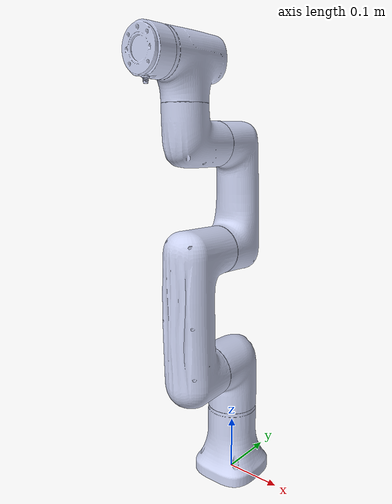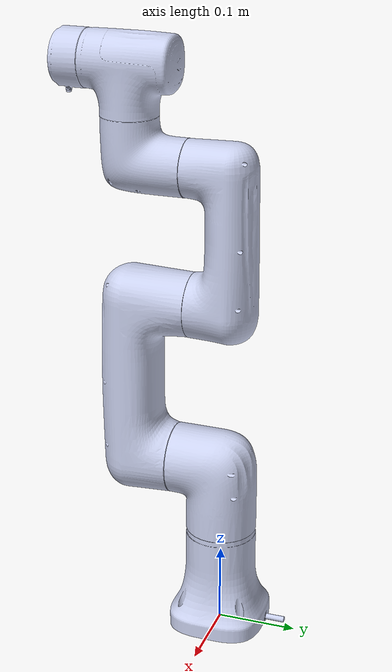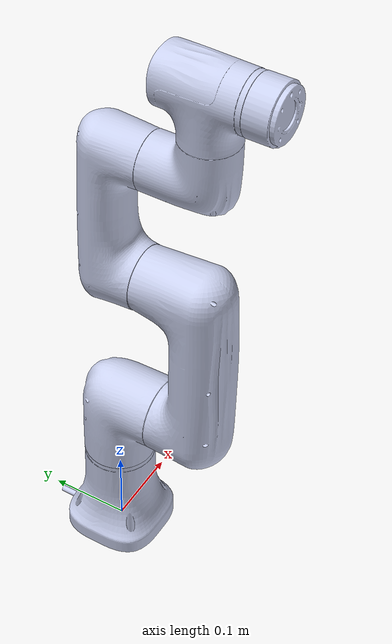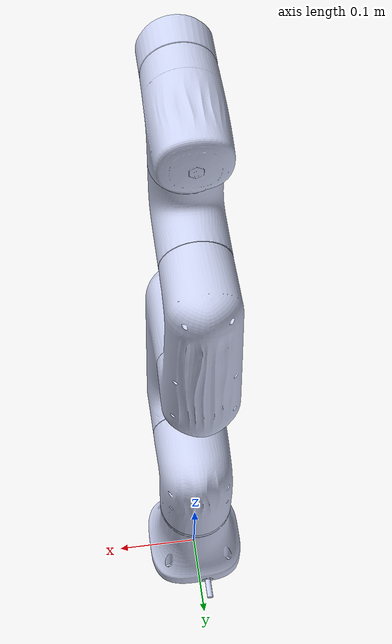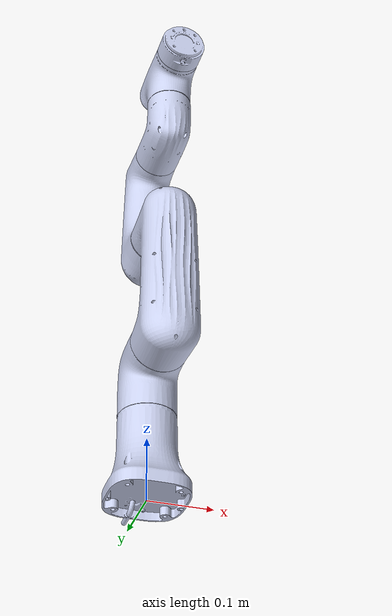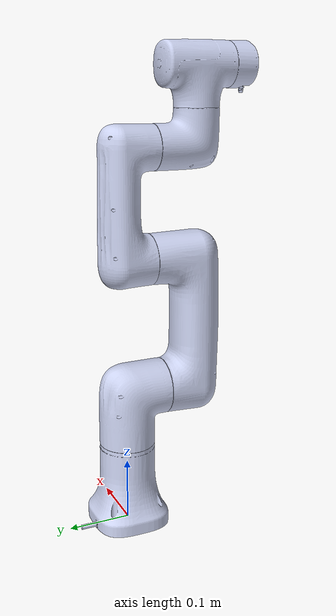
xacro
<?xml version="1.0" encoding="utf-8"?>
<robot xmlns:xacro="http://www.ros.org/wiki/xacro"
  name="nova2s_robot">
  <link name="dummy_link" />
  <link
    name="base_link">
    <inertial>
      <origin
        xyz="1.0209E-06 0.00010913 0.063235"
        rpy="0 0 0" />
      <mass
        value="0.91548" />
      <inertia
        ixx="0.0018379"
        ixy="-7.0677E-07"
        ixz="1.1593E-07"
        iyy="0.0018392"
        iyz="-6.2348E-06"
        izz="0.0012494" />
    </inertial>
    <visual>
      <origin
        xyz="0 0 0"
        rpy="0 0 0" />
      <geometry>
        <mesh
          filename="package://dobot_rviz/meshes/nova2s/base_link.STL" />
      </geometry>
      <material
        name="">
        <color
          rgba="0.79216 0.81961 0.93333 50" />
      </material>
    </visual>
    <collision>
      <origin
        xyz="0 0 0"
        rpy="0 0 0" />
      <geometry>
        <mesh
          filename="package://dobot_rviz/meshes/nova2s/base_link.STL" />
      </geometry>
    </collision>
  </link>
  <joint name="dummy_joint" type="fixed">
      <parent link="dummy_link" />
      <child  link="base_link" />
    </joint>
  <link
    name="Link1">
    <inertial>
      <origin
        xyz="-4.0953E-06 -0.0141 -0.022584"
        rpy="0 0 0" />
      <mass
        value="0.99824" />
      <inertia
        ixx="0.0022249"
        ixy="-1.0241E-07"
        ixz="-6.2827E-08"
        iyy="0.0017619"
        iyz="-0.000332"
        izz="0.0014195" />
    </inertial>
    <visual>
      <origin
        xyz="0 0 0"
        rpy="0 0 0" />
      <geometry>
        <mesh
          filename="package://dobot_rviz/meshes/nova2s/Link1.STL" />
      </geometry>
      <material
        name="">
        <color
          rgba="0.79216 0.81961 0.93333 50" />
      </material>
    </visual>
    <collision>
      <origin
        xyz="0 0 0"
        rpy="0 0 0" />
      <geometry>
        <mesh
          filename="package://dobot_rviz/meshes/nova2s/Link1.STL" />
      </geometry>
    </collision>
  </link>
  <joint
    name="joint1"
    type="revolute">
    <origin
      xyz="0 0 0.2234"
      rpy="0 0 0" />
    <parent
      link="base_link" />
    <child
      link="Link1" />
    <axis
      xyz="0 0 -1" />
    <limit
      lower="-6.283"
      upper="6.283"
      effort="0"
      velocity="0" />
  </joint>
  <link
    name="Link2">
    <inertial>
      <origin
        xyz="-0.11326 4.3343E-06 0.10595"
        rpy="0 0 0" />
      <mass
        value="1.7632" />
      <inertia
        ixx="0.002118"
        ixy="-1.1105E-09"
        ixz="0.001119"
        iyy="0.014156"
        iyz="2.2314E-07"
        izz="0.013753" />
    </inertial>
    <visual>
      <origin
        xyz="0 0 0"
        rpy="0 0 0" />
      <geometry>
        <mesh
          filename="package://dobot_rviz/meshes/nova2s/Link2.STL" />
      </geometry>
      <material
        name="">
        <color
          rgba="0.79216 0.81961 0.93333 50" />
      </material>
    </visual>
    <collision>
      <origin
        xyz="0 0 0"
        rpy="0 0 0" />
      <geometry>
        <mesh
          filename="package://dobot_rviz/meshes/nova2s/Link2.STL" />
      </geometry>
    </collision>
  </link>
  <joint
    name="joint2"
    type="revolute">
    <origin
      xyz="0 0 0"
      rpy="1.5708 1.5708 0" />
    <parent
      link="Link1" />
    <child
      link="Link2" />
    <axis
      xyz="0 0 -1" />
    <limit
      lower="-2.618"
      upper="2.618"
      effort="0"
      velocity="0" />
  </joint>
  <link
    name="Link3">
    <inertial>
      <origin
        xyz="-0.081962 -5.0488E-06 -0.0012298"
        rpy="0 0 0" />
      <mass
        value="1.097" />
      <inertia
        ixx="0.00089499"
        ixy="8.6274E-07"
        ixz="-0.00019344"
        iyy="0.0060939"
        iyz="1.2637E-07"
        izz="0.0060142" />
    </inertial>
    <visual>
      <origin
        xyz="0 0 0"
        rpy="0 0 0" />
      <geometry>
        <mesh
          filename="package://dobot_rviz/meshes/nova2s/Link3.STL" />
      </geometry>
      <material
        name="">
        <color
          rgba="0.79216 0.81961 0.93333 50" />
      </material>
    </visual>
    <collision>
      <origin
        xyz="0 0 0"
        rpy="0 0 0" />
      <geometry>
        <mesh
          filename="package://dobot_rviz/meshes/nova2s/Link3.STL" />
      </geometry>
    </collision>
  </link>
  <joint
    name="joint3"
    type="revolute">
    <origin
      xyz="-0.21 0 0"
      rpy="0 0 0" />
    <parent
      link="Link2" />
    <child
      link="Link3" />
    <axis
      xyz="0 0 -1" />
    <limit
      lower="-2.618"
      upper="2.618"
      effort="0"
      velocity="0" />
  </joint>
  <link
    name="Link4">
    <inertial>
      <origin
        xyz="-1.0901E-05 -0.011931 -0.016232"
        rpy="0 0 0" />
      <mass
        value="0.48466" />
      <inertia
        ixx="0.00065488"
        ixy="-8.7107E-08"
        ixz="-1.9656E-07"
        iyy="0.00050403"
        iyz="-9.9374E-05"
        izz="0.00044921" />
    </inertial>
    <visual>
      <origin
        xyz="0 0 0"
        rpy="0 0 0" />
      <geometry>
        <mesh
          filename="package://dobot_rviz/meshes/nova2s/Link4.STL" />
      </geometry>
      <material
        name="">
        <color
          rgba="0.79216 0.81961 0.93333 50" />
      </material>
    </visual>
    <collision>
      <origin
        xyz="0 0 0"
        rpy="0 0 0" />
      <geometry>
        <mesh
          filename="package://dobot_rviz/meshes/nova2s/Link4.STL" />
      </geometry>
    </collision>
  </link>
  <joint
    name="joint4"
    type="revolute">
    <origin
      xyz="-0.17 0 0.1175"
      rpy="0 0 -1.5708" />
    <parent
      link="Link3" />
    <child
      link="Link4" />
    <axis
      xyz="0 0 -1" />
    <limit
      lower="-2.653"
      upper="2.653"
      effort="0"
      velocity="0" />
  </joint>
  <link
    name="Link5">
    <inertial>
      <origin
        xyz="-2.2553E-06 -0.0036262 -0.0097886"
        rpy="0 0 0" />
      <mass
        value="0.5501" />
      <inertia
        ixx="0.00078033"
        ixy="3.5668E-08"
        ixz="-4.0432E-08"
        iyy="0.0004979"
        iyz="-1.7917E-05"
        izz="0.00064799" />
    </inertial>
    <visual>
      <origin
        xyz="0 0 0"
        rpy="0 0 0" />
      <geometry>
        <mesh
          filename="package://dobot_rviz/meshes/nova2s/Link5.STL" />
      </geometry>
      <material
        name="">
        <color
          rgba="0.79216 0.81961 0.93333 50" />
      </material>
    </visual>
    <collision>
      <origin
        xyz="0 0 0"
        rpy="0 0 0" />
      <geometry>
        <mesh
          filename="package://dobot_rviz/meshes/nova2s/Link5.STL" />
      </geometry>
    </collision>
  </link>
  <joint
    name="joint5"
    type="revolute">
    <origin
      xyz="0 -0.12 0"
      rpy="1.5708 0 0" />
    <parent
      link="Link4" />
    <child
      link="Link5" />
    <axis
      xyz="0 0 -1" />
    <limit
      lower="-6.283"
      upper="6.283"
      effort="0"
      velocity="0" />
  </joint>
  <link
    name="Link6">
    <inertial>
      <origin
        xyz="-2.021E-08 0.0003044 -0.021814"
        rpy="0 0 0" />
      <mass
        value="0.13664" />
      <inertia
        ixx="5.556E-05"
        ixy="-9.8081E-11"
        ixz="-6.3431E-12"
        iyy="5.616E-05"
        iyz="-3.6071E-08"
        izz="8.1817E-05" />
    </inertial>
    <visual>
      <origin
        xyz="0 0 0"
        rpy="0 0 0" />
      <geometry>
        <mesh
          filename="package://dobot_rviz/meshes/nova2s/Link6.STL" />
      </geometry>
      <material
        name="">
        <color
          rgba="0.79216 0.81961 0.93333 50" />
      </material>
    </visual>
    <collision>
      <origin
        xyz="0 0 0"
        rpy="0 0 0" />
      <geometry>
        <mesh
          filename="package://dobot_rviz/meshes/nova2s/Link6.STL" />
      </geometry>
    </collision>
  </link>
  <joint
    name="joint6"
    type="revolute">
    <origin
      xyz="0 0.09 0"
      rpy="-1.5708 0 0" />
    <parent
      link="Link5" />
    <child
      link="Link6" />
    <axis
      xyz="0 0 -1" />
    <limit
      lower="-6.283"
      upper="6.283"
      effort="0"
      velocity="0" />
  </joint>
  <xacro:arg name="initial_positions_file" default="initial_positions.yaml" />

  <!-- Import control_xacro -->
  <xacro:include filename="nova2s_robot.ros2_control.xacro" />

  <xacro:nova2s_robot_ros2_control name="FakeSystem" initial_positions_file="$(arg initial_positions_file)"/>
</robot>
